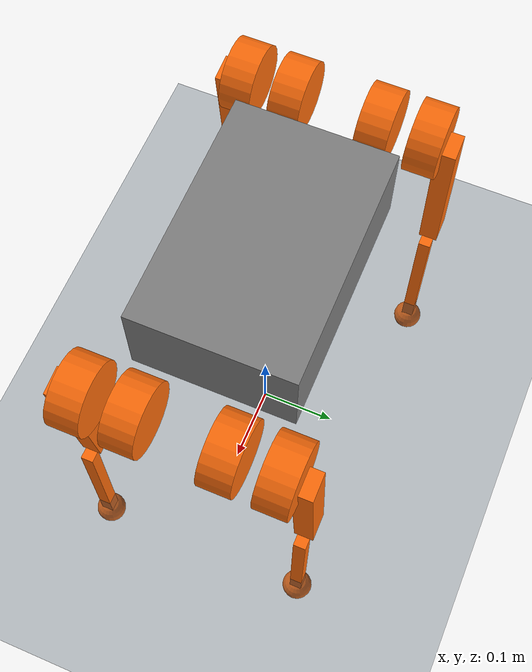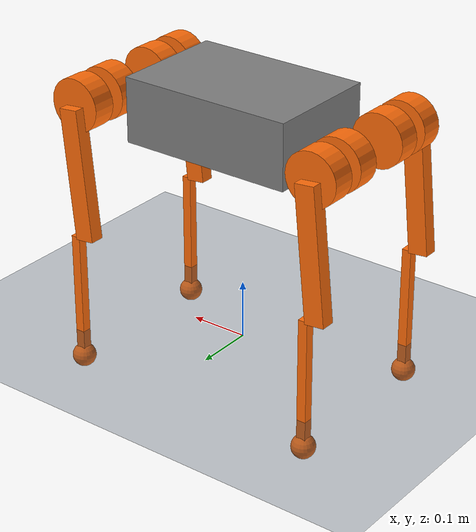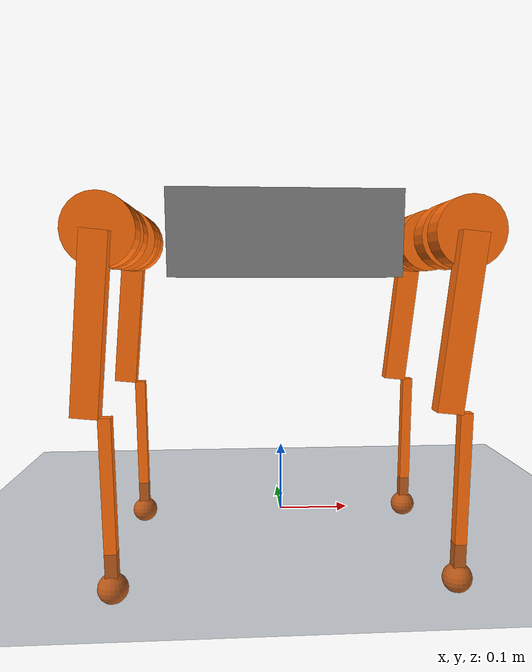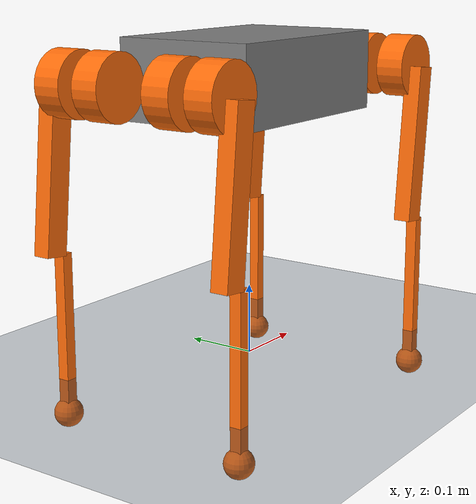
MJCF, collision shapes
<mujoco model="sduog48">
    <compiler angle="radian" meshdir="../meshes/" eulerseq="zyx"/>
    <option gravity='0 0 -9.81' solver='PGS'/>
    <size njmax="500" nconmax="100" />
    <asset>
    <texture type="skybox" builtin="gradient" rgb1="0.3 0.5 0.7" rgb2="0 0 0" width="512" height="512" />
    <texture name="texplane" type="2d" builtin="checker" rgb1=".2 .3 .4" rgb2=".1 0.15 0.2" width="512" height="512" mark="cross" markrgb=".8 .8 .8" />
    <material name="matplane" reflectance="0.3" texture="texplane" texrepeat="1 1" texuniform="true" />
        <mesh name="trunk" file="trunk.stl" />
        <mesh name="hip" file="hip.stl" />
        <mesh name="thigh_mirror" file="thigh_mirror.stl" />
        <mesh name="calf" file="calf.stl" />
        <mesh name="thigh" file="thigh.stl" />
    </asset>
    <worldbody>
    <light directional="true" diffuse=".4 .4 .4" specular="0.1 0.1 0.1" pos="0 0 5.0" dir="0 0 -1" castshadow="false" />
    <light directional="true" diffuse=".6 .6 .6" specular="0.2 0.2 0.2" pos="0 0 4" dir="0 0 -1" />
    <geom name="floor" pos="0 0 0" size="100 100 1" type="plane" material="matplane" margin="0.001" contype="1" conaffinity="15" friction="1 0.005 0.0001" />

        <body name="trunk" pos="0 0 0.4">
            <inertial pos="-0.00998573 0.00199715 -0.00499287" quat="0.00436269 0.709939 -0.00785922 0.704206" mass="7.01" diaginertia="0.124184 0.107012 0.0303102" />
            <joint name="floating_base_joint" type="free" />
            <geom type="mesh" contype="0" conaffinity="0" group="1" mesh="trunk" />
            <geom size="0.1505 0.1 0.055" type="box" />
            <geom size="0.0075 0.0075 0.002" type="box" contype="0" conaffinity="0" group="1" />
            <body name="FR_hip" pos="0.226 -0.055 0">
                <inertial pos="-0.003311 -0.000635 3.1e-05" quat="0.690882 0.154338 0.153534 0.689413" mass="0.75" diaginertia="0.000775212 0.000502914 0.000502055" />
                <joint name="FR_hip_joint" pos="0 0 0" axis="1 0 0" limited="true" range="-1.0472 1.0472" />
                <geom quat="0 1 0 0" type="mesh" contype="0" conaffinity="0" group="1" rgba="1 0.423529 0.0392157 1" mesh="hip" />
                <geom size="0.045 0.02" quat="0.707107 0.707107 0 0" type="cylinder" rgba="1 0.423529 0.0392157 1" />
                <body name="FR_thigh" pos="0 -0.0875 0">
                    <inertial pos="-0.002 0.023 -0.0263" quat="0.676669 -0.0316401 0.0868634 0.73046" mass="1.25" diaginertia="0.00545464 0.00531835 0.000942016" />
                    <joint name="FR_thigh_joint" pos="0 0 0" axis="0 -1 0" limited="true" range="-3.14159 1.0472" />
                    <geom type="mesh" contype="0" conaffinity="0" group="1" rgba="1 0.423529 0.0392157 1" mesh="thigh_mirror" />
                    <geom size="0.1125 0.01225 0.017" pos="-0.012 0 -0.1125" quat="0.670882 0 0.741564 0" type="box" rgba="1 0.423529 0.0392157 1" />
                    <geom size="0.045 0.02" pos="0 0.025 0" quat="0.707107 0.707107 0 0" type="cylinder" rgba="1 0.423529 0.0392157 1" />
                    <body name="FR_calf" pos="0 0 -0.225">
                        <inertial pos="0.00909091 0 -0.108636" quat="0.705775 0.0433718 0.0433718 0.705775" mass="0.22" diaginertia="0.00183194 0.00181008 4.5767e-05" />
                        <joint name="FR_calf_joint" pos="0 0 0" axis="0 -1 0" limited="true" range="0.916298 2.69653" />
                        <geom type="mesh" contype="0" conaffinity="0" group="1" rgba="1 0.423529 0.0392157 1" mesh="calf" />
                        <geom size="0.1125 0.008 0.008" pos="0 0 -0.1125" quat="0.707107 0 0.707107 0" type="box" rgba="1 0.423529 0.0392157 1" />
                        <geom size="0.01" pos="0 0 -0.225" contype="0" conaffinity="0" group="1" rgba="1 0.423529 0.0392157 1" />
                        <geom size="0.02" pos="0 0 -0.225" rgba="1 0.423529 0.0392157 1" />
                    </body>
                </body>
            </body>
            <body name="FL_hip" pos="0.226 0.055 0">
                <inertial pos="-0.003311 0.000635 3.1e-05" quat="0.689413 0.153534 0.154338 0.690882" mass="0.75" diaginertia="0.000775212 0.000502914 0.000502055" />
                <joint name="FL_hip_joint" pos="0 0 0" axis="1 0 0" limited="true" range="-1.0472 1.0472" />
                <geom type="mesh" contype="0" conaffinity="0" group="1" rgba="1 0.423529 0.0392157 1" mesh="hip" />
                <geom size="0.045 0.02" quat="0.707107 0.707107 0 0" type="cylinder" rgba="1 0.423529 0.0392157 1" />
                <body name="FL_thigh" pos="0 0.0875 0">
                    <inertial pos="-0.002 -0.023 -0.0263" quat="0.73046 0.0868634 -0.0316401 0.676669" mass="1.25" diaginertia="0.00545464 0.00531835 0.000942016" />
                    <joint name="FL_thigh_joint" pos="0 0 0" axis="0 -1 0" limited="true" range="-3.14159 1.0472" />
                    <geom type="mesh" contype="0" conaffinity="0" group="1" rgba="1 0.423529 0.0392157 1" mesh="thigh" />
                    <geom size="0.1125 0.01225 0.017" pos="-0.012 0 -0.1125" quat="0.670882 0 0.741564 0" type="box" rgba="1 0.423529 0.0392157 1" />
                    <geom size="0.045 0.02" pos="0 -0.025 0" quat="0.707107 0.707107 0 0" type="cylinder" rgba="1 0.423529 0.0392157 1" />
                    <body name="FL_calf" pos="0 0 -0.225">
                        <inertial pos="0.00909091 0 -0.108636" quat="0.705775 0.0433718 0.0433718 0.705775" mass="0.22" diaginertia="0.00183194 0.00181008 4.5767e-05" />
                        <joint name="FL_calf_joint" pos="0 0 0" axis="0 -1 0" limited="true" range="0.916298 2.69653" />
                        <geom type="mesh" contype="0" conaffinity="0" group="1" rgba="1 0.423529 0.0392157 1" mesh="calf" />
                        <geom size="0.1125 0.008 0.008" pos="0 0 -0.1125" quat="0.707107 0 0.707107 0" type="box" rgba="1 0.423529 0.0392157 1" />
                        <geom size="0.01" pos="0 0 -0.225" contype="0" conaffinity="0" group="1" rgba="1 0.423529 0.0392157 1" />
                        <geom size="0.02" pos="0 0 -0.225" rgba="1 0.423529 0.0392157 1" />
                    </body>
                </body>
            </body>
            <body name="RR_hip" pos="-0.226 -0.055 0">
                <inertial pos="0.003311 -0.000635 3.1e-05" quat="0.689413 -0.153534 -0.154338 0.690882" mass="0.75" diaginertia="0.000775212 0.000502914 0.000502055" />
                <joint name="RR_hip_joint" pos="0 0 0" axis="1 0 0" limited="true" range="-1.0472 1.0472" />
                <geom quat="0 0 0 -1" type="mesh" contype="0" conaffinity="0" group="1" rgba="1 0.423529 0.0392157 1" mesh="hip" />
                <geom size="0.045 0.02" quat="0.707107 0.707107 0 0" type="cylinder" rgba="1 0.423529 0.0392157 1" />
                <body name="RR_thigh" pos="0 -0.0875 0">
                    <inertial pos="-0.002 0.023 -0.0263" quat="0.676669 -0.0316401 0.0868634 0.73046" mass="1.25" diaginertia="0.00545464 0.00531835 0.000942016" />
                    <joint name="RR_thigh_joint" pos="0 0 0" axis="0 -1 0" limited="true" range="-3.14159 1.0472" />
                    <geom type="mesh" contype="0" conaffinity="0" group="1" rgba="1 0.423529 0.0392157 1" mesh="thigh_mirror" />
                    <geom size="0.1125 0.01225 0.017" pos="-0.012 0 -0.1125" quat="0.670882 0 0.741564 0" type="box" rgba="1 0.423529 0.0392157 1" />
                    <geom size="0.045 0.02" pos="0 0.025 0" quat="0.707107 0.707107 0 0" type="cylinder" rgba="1 0.423529 0.0392157 1" />
                    <body name="RR_calf" pos="0 0 -0.225">
                        <inertial pos="0.00909091 0 -0.108636" quat="0.705775 0.0433718 0.0433718 0.705775" mass="0.22" diaginertia="0.00183194 0.00181008 4.5767e-05" />
                        <joint name="RR_calf_joint" pos="0 0 0" axis="0 -1 0" limited="true" range="0.916298 2.69653" />
                        <geom type="mesh" contype="0" conaffinity="0" group="1" rgba="1 0.423529 0.0392157 1" mesh="calf" />
                        <geom size="0.1125 0.008 0.008" pos="0 0 -0.1125" quat="0.707107 0 0.707107 0" type="box" rgba="1 0.423529 0.0392157 1" />
                        <geom size="0.01" pos="0 0 -0.225" contype="0" conaffinity="0" group="1" rgba="1 0.423529 0.0392157 1" />
                        <geom size="0.02" pos="0 0 -0.225" rgba="1 0.423529 0.0392157 1" />
                    </body>
                </body>
            </body>
            <body name="RL_hip" pos="-0.226 0.055 0">
                <inertial pos="0.003311 0.000635 3.1e-05" quat="0.690882 -0.154338 -0.153534 0.689413" mass="0.75" diaginertia="0.000775212 0.000502914 0.000502055" />
                <joint name="RL_hip_joint" pos="0 0 0" axis="1 0 0" limited="true" range="-1.0472 1.0472" />
                <geom quat="0 0 1 0" type="mesh" contype="0" conaffinity="0" group="1" rgba="1 0.423529 0.0392157 1" mesh="hip" />
                <geom size="0.045 0.02" quat="0.707107 0.707107 0 0" type="cylinder" rgba="1 0.423529 0.0392157 1" />
                <body name="RL_thigh" pos="0 0.0875 0">
                    <inertial pos="-0.002 -0.023 -0.0263" quat="0.73046 0.0868634 -0.0316401 0.676669" mass="1.25" diaginertia="0.00545464 0.00531835 0.000942016" />
                    <joint name="RL_thigh_joint" pos="0 0 0" axis="0 -1 0" limited="true" range="-3.14159 1.0472" />
                    <geom type="mesh" contype="0" conaffinity="0" group="1" rgba="1 0.423529 0.0392157 1" mesh="thigh" />
                    <geom size="0.1125 0.01225 0.017" pos="-0.012 0 -0.1125" quat="0.670882 0 0.741564 0" type="box" rgba="1 0.423529 0.0392157 1" />
                    <geom size="0.045 0.02" pos="0 -0.025 0" quat="0.707107 0.707107 0 0" type="cylinder" rgba="1 0.423529 0.0392157 1" />
                    <body name="RL_calf" pos="0 0 -0.225">
                        <inertial pos="0.00909091 0 -0.108636" quat="0.705775 0.0433718 0.0433718 0.705775" mass="0.22" diaginertia="0.00183194 0.00181008 4.5767e-05" />
                        <joint name="RL_calf_joint" pos="0 0 0" axis="0 -1 0" limited="true" range="0.916298 2.69653" />
                        <geom type="mesh" contype="0" conaffinity="0" group="1" rgba="1 0.423529 0.0392157 1" mesh="calf" />
                        <geom size="0.1125 0.008 0.008" pos="0 0 -0.1125" quat="0.707107 0 0.707107 0" type="box" rgba="1 0.423529 0.0392157 1" />
                        <geom size="0.01" pos="0 0 -0.225" contype="0" conaffinity="0" group="1" rgba="1 0.423529 0.0392157 1" />
                        <geom size="0.02" pos="0 0 -0.225" rgba="1 0.423529 0.0392157 1" />
                    </body>
                </body>
            </body>
        </body>
    </worldbody>
</mujoco>
<actuator>
    <position name="FR_hip" joint="FR_hip_joint" kp="100"/>
    <position name="FR_thign" joint="FR_thign_joint" kp="100"/>
    <position name="FR_calf" joint="FR_calf_joint" kp="100"/>
    <position name="FL_hip" joint="FL_hip_joint" kp="100"/>
    <position name="FL_thign" joint="FL_thign_joint" kp="100"/>
    <position name="FL_calf" joint="FL_calf_joint" kp="100"/>
    <position name="RR_hip" joint="RR_hip_joint" kp="100"/>
    <position name="RR_thign" joint="RR_thign_joint" kp="100"/>
    <position name="RR_calf" joint="RR_calf_joint" kp="100"/>
    <position name="RL_hip" joint="RL_hip_joint" kp="100"/>
    <position name="RL_thign" joint="RL_thign_joint" kp="100"/>
    <position name="RL_calf" joint="RL_calf_joint" kp="100"/>
</actuator>
  <sensor>
    <jointpos joint="FR_hip_joint" user="6"/>
    <jointpos joint="FR_thign_joint" user="6"/>
    <jointpos joint="FR_calf_joint" user="6"/>
    <jointpos joint="FL_hip_joint" user="6"/>
    <jointpos joint="FL_thign_joint" user="6"/>
    <jointpos joint="FL_calf_joint" user="6"/>
    <jointpos joint="RR_hip_joint" user="6"/>
    <jointpos joint="RR_thign_joint" user="6"/>
    <jointpos joint="RR_calf_joint" user="6"/>
    <jointpos joint="RL_hip_joint" user="6"/>
    <jointpos joint="RL_thign_joint" user="6"/>
    <jointpos joint="RL_calf_joint" user="6"/>

    <jointvel joint="FR_hip_joint" user="6"/>
    <jointvel joint="FR_thign_joint" user="6"/>
    <jointvel joint="FR_calf_joint" user="6"/>
    <jointvel joint="FL_hip_joint" user="6"/>
    <jointvel joint="FL_thign_joint" user="6"/>
    <jointvel joint="FL_calf_joint" user="6"/>
    <jointvel joint="RR_hip_joint" user="6"/>
    <jointvel joint="RR_thign_joint" user="6"/>
    <jointvel joint="RR_calf_joint" user="6"/>
    <jointvel joint="RL_hip_joint" user="6"/>
    <jointvel joint="RL_thign_joint" user="6"/>
    <jointvel joint="RL_calf_joint" user="6"/>

    <framequat name='orientation' objtype='site' noise='0.001' objname='imu'/>
    <framepos name='position' objtype='site' noise='0.001' objname='imu'/>
    <gyro name='angular-velocity' site='imu' noise='0.005' cutoff='34.9'/>
    <velocimeter name='linear-velocity' site='imu' noise='0.001' cutoff='30'/>
  </sensor>
